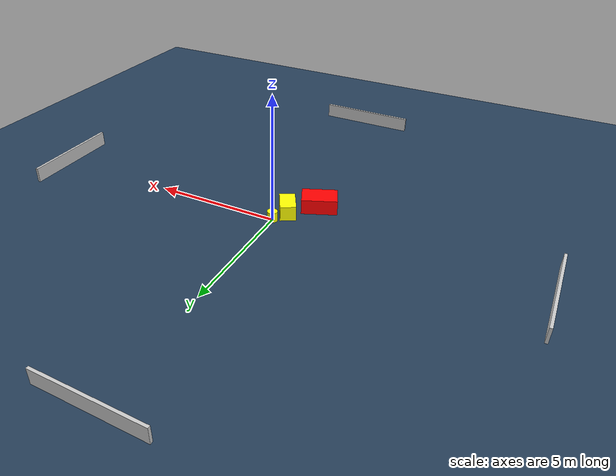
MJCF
<?xml version="1.0" ?>
<mujoco model="generated_environment">
  <option timestep="0.01" integrator="RK4" cone="elliptic"/>
  <default>
    <geom density="1"/>
  </default>
  <asset>
    <texture builtin="gradient" height="3072" name="skybox" rgb1="0.3 0.5 0.7" rgb2="0 0 0" type="skybox" width="512"/>
    <texture builtin="checker" height="300" name="groundplane" rgb1="0.2 0.3 0.4" rgb2="0.1 0.2 0.3" type="2d" width="300"/>
    <material name="groundplane" reflectance="0.2" texrepeat="5 5" texture="groundplane"/>
  </asset>
  <worldbody>
    <light dir="0 0 -1" directional="true" pos="0 0 1.5"/>
    <geom condim="3" friction="0.5 0.005 0.001" material="groundplane" name="floor" pos="0 0 0" size="0 0 0.05" type="plane"/>
    <body name="walls">
      <geom name="wall_1" condim="4" pos="-10.0 0.0 0.3" rgba="0.800000011920929 0.800000011920929 0.800000011920929 1.0" size="0.05 2.0 0.3" type="box"/>
      <geom name="wall_2" condim="4" pos="10.0 0.0 0.3" rgba="0.800000011920929 0.800000011920929 0.800000011920929 1.0" size="0.05 2.0 0.3" type="box"/>
      <geom name="wall_3" condim="4" pos="0.0 -10.0 0.3" rgba="0.800000011920929 0.800000011920929 0.800000011920929 1.0" size="2.0 0.05 0.3" type="box"/>
      <geom name="wall_4" condim="4" pos="0.0 10.0 0.3" rgba="0.800000011920929 0.800000011920929 0.800000011920929 1.0" size="2.0 0.05 0.3" type="box"/>
    </body>
    <body name="robot">
      <joint name="joint_x" type="slide" pos="0 0 0" axis="1 0 0"/>
      <joint name="joint_y" type="slide" pos="0 0 0" axis="0 1 0"/>
      <geom name="robot" type="cylinder" pos="0.0 0.0 0.2" size="0.2 0.2 0.0" mass="5.0" friction="1.0 0.005 0.0001" condim="4" rgba="1.0 1.0 0.0 1.0"/>
    </body>
    <body name="obstacle_1_movable">
      <geom name="obstacle_1_movable" condim="4" pos="-0.3044636028039837 -0.6596639446467736 0.3" euler="0 0 28.850123474477954" friction="0.0 0.005 0.001" rgba="1.0 1.0 0.0 1.0" size="0.30414157927560875 0.49859073199772763 0.3" type="box" mass="0.1"/>
      <joint type="free"/>
    </body>
    <body name="obstacle_2_static">
      <geom name="obstacle_2_static" condim="4" pos="-1.2209490858333198 -1.5791377824008053 0.3" euler="0 0 113.49752590715433" friction="0.0 0.005 0.001" rgba="1.0 0.0 0.0 1.0" size="0.4439841882899225 0.6924209254642584 0.3" type="box"/>
    </body>
  </worldbody>
  <actuator>
    <motor name="actuator_x" joint="joint_x" gear="1" ctrlrange="-1 1"/>
    <motor name="actuator_y" joint="joint_y" gear="1" ctrlrange="-1 1"/>
  </actuator>
</mujoco>
